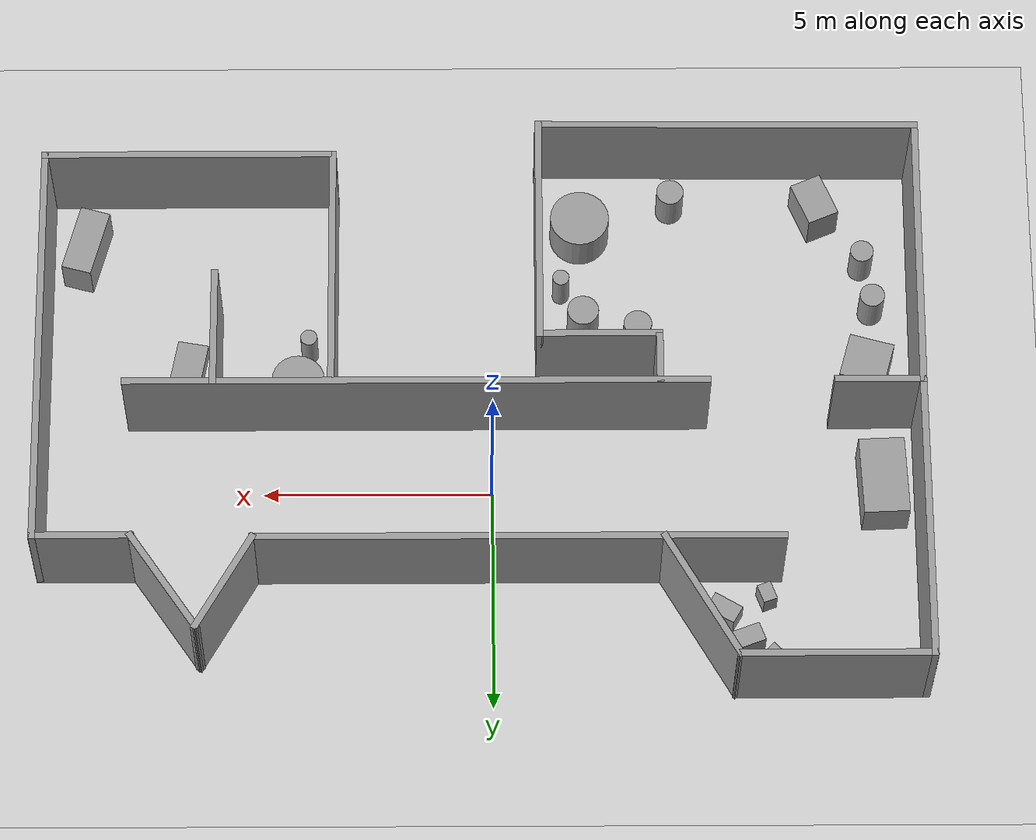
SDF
<sdf version="1.7">
 <world name="default">
  <light name="sun" type="directional">
   <pose>0 0 10 0 -0 0</pose>
   <diffuse>0.8 0.8 0.8 1</diffuse>
   <specular>0.2 0.2 0.2 1</specular>
   <attenuation>
    <range>1000</range>
    <constant>0.9</constant>
    <linear>0.01</linear>
    <quadratic>0.001</quadratic>
   </attenuation>
   <direction>-0.5 0.1 -0.9</direction>
   <spot><inner_angle>0</inner_angle><outer_angle>0</outer_angle><falloff>0</falloff></spot>
  </light>
  <model name="ground_plane">
   <static>1</static>
   <link name="link">
    <collision name="collision">
     <geometry><plane><normal>0 0 1</normal><size>100 100</size></plane></geometry>
     <surface>
      <contact><collide_bitmask>65535</collide_bitmask></contact>
      <friction><ode><mu>100</mu><mu2>50</mu2></ode></friction>
     </surface>
    </collision>
    <visual name="visual">
     <cast_shadows>0</cast_shadows>
     <geometry><plane><normal>0 0 1</normal><size>100 100</size></plane></geometry>
     <material>
      <script><uri>file://media/materials/scripts/gazebo.material</uri><name>Gazebo/Grey</name></script>
     </material>
    </visual>
   </link>
  </model>
  <gravity>0 0 -9.8</gravity>
  <magnetic_field>6e-06 2.3e-05 -4.2e-05</magnetic_field>
  <atmosphere type="adiabatic"/>
  <physics type="ode">
   <max_step_size>0.001</max_step_size>
   <real_time_factor>1</real_time_factor>
   <real_time_update_rate>1000</real_time_update_rate>
  </physics>
  <scene><ambient>0.4 0.4 0.4 1</ambient><background>0.7 0.7 0.7 1</background><shadows>1</shadows></scene>
  <audio><device>default</device></audio>
  <spherical_coordinates>
   <surface_model>EARTH_WGS84</surface_model>
   <latitude_deg>0</latitude_deg>
   <longitude_deg>0</longitude_deg>
   <elevation>0</elevation>
   <heading_deg>0</heading_deg>
  </spherical_coordinates>
  <model name="hab">
   <pose>0.241305 -1.56265 0 0 -0 0</pose>
   <link name="Wall_0">
    <collision name="Wall_0_Collision">
     <geometry><box><size>12.75 0.15 2.5</size></box></geometry>
     <pose>0 0 1.25 0 -0 0</pose>
    </collision>
    <visual name="Wall_0_Visual">
     <pose>0 0 1.25 0 -0 0</pose>
     <geometry><box><size>12.75 0.15 2.5</size></box></geometry>
     <material>
      <script><uri>file://media/materials/scripts/gazebo.material</uri><name>Gazebo/Grey</name></script>
      <ambient>1 1 1 1</ambient>
     </material>
     <meta><layer>0</layer></meta>
    </visual>
    <pose>1.40569 -0.080347 0 0 -0 0</pose>
   </link>
   <link name="Wall_10">
    <collision name="Wall_10_Collision">
     <geometry><box><size>6.5 0.15 2.5</size></box></geometry>
     <pose>0 0 1.25 0 -0 0</pose>
    </collision>
    <visual name="Wall_10_Visual">
     <pose>0 0 1.25 0 -0 0</pose>
     <geometry><box><size>6.5 0.15 2.5</size></box></geometry>
     <material>
      <script><uri>file://media/materials/scripts/gazebo.material</uri><name>Gazebo/Grey</name></script>
      <ambient>1 1 1 1</ambient>
     </material>
     <meta><layer>0</layer></meta>
    </visual>
    <pose>6.42837 -5.57433 0 0 -0 3.14159</pose>
   </link>
   <link name="Wall_11">
    <collision name="Wall_11_Collision">
     <geometry><box><size>5.5 0.15 2.5</size></box></geometry>
     <pose>0 0 1.25 0 -0 0</pose>
    </collision>
    <visual name="Wall_11_Visual">
     <pose>0 0 1.25 0 -0 0</pose>
     <geometry><box><size>5.5 0.15 2.5</size></box></geometry>
     <material>
      <script><uri>file://media/materials/scripts/gazebo.material</uri><name>Gazebo/Grey</name></script>
      <ambient>1 1 1 1</ambient>
     </material>
     <meta><layer>0</layer></meta>
    </visual>
    <pose>3.25337 -2.89933 0 0 -0 1.5708</pose>
   </link>
   <link name="Wall_13">
    <collision name="Wall_13_Collision">
     <geometry><box><size>1.25 0.15 2.5</size></box></geometry>
     <pose>0 0 1.25 0 -0 0</pose>
    </collision>
    <visual name="Wall_13_Visual">
     <pose>0 0 1.25 0 -0 0</pose>
     <geometry><box><size>1.25 0.15 2.5</size></box></geometry>
     <material>
      <script><uri>file://media/materials/scripts/gazebo.material</uri><name>Gazebo/Grey</name></script>
      <ambient>1 1 1 1</ambient>
     </material>
     <meta><layer>0</layer></meta>
    </visual>
    <pose>-3.87825 -0.643615 0 0 -0 -1.5708</pose>
   </link>
   <link name="Wall_14">
    <collision name="Wall_14_Collision">
     <geometry><box><size>2.75 0.15 2.5</size></box></geometry>
     <pose>0 0 1.25 0 -0 0</pose>
    </collision>
    <visual name="Wall_14_Visual">
     <pose>0 0 1.25 0 -0 0</pose>
     <geometry><box><size>2.75 0.15 2.5</size></box></geometry>
     <material>
      <script><uri>file://media/materials/scripts/gazebo.material</uri><name>Gazebo/Grey</name></script>
      <ambient>1 1 1 1</ambient>
     </material>
     <meta><layer>0</layer></meta>
    </visual>
    <pose>-2.57825 -1.19362 0 0 -0 0</pose>
   </link>
   <link name="Wall_15">
    <collision name="Wall_15_Collision">
     <geometry><box><size>5.25 0.15 2.5</size></box></geometry>
     <pose>0 0 1.25 0 -0 0</pose>
    </collision>
    <visual name="Wall_15_Visual">
     <pose>0 0 1.25 0 -0 0</pose>
     <geometry><box><size>5.25 0.15 2.5</size></box></geometry>
     <material>
      <script><uri>file://media/materials/scripts/gazebo.material</uri><name>Gazebo/Grey</name></script>
      <ambient>1 1 1 1</ambient>
     </material>
     <meta><layer>0</layer></meta>
    </visual>
    <pose>-1.27825 -3.74362 0 0 -0 -1.5708</pose>
   </link>
   <link name="Wall_16">
    <collision name="Wall_16_Collision">
     <geometry><box><size>8.47491 0.15 2.5</size></box></geometry>
     <pose>0 0 1.25 0 -0 0</pose>
    </collision>
    <visual name="Wall_16_Visual">
     <pose>0 0 1.25 0 -0 0</pose>
     <geometry><box><size>8.47491 0.15 2.5</size></box></geometry>
     <material>
      <script><uri>file://media/materials/scripts/gazebo.material</uri><name>Gazebo/Grey</name></script>
      <ambient>1 1 1 1</ambient>
     </material>
     <meta><layer>0</layer></meta>
    </visual>
    <pose>-5.44053 -6.26818 0 0 -0 3.13548</pose>
   </link>
   <link name="Wall_17">
    <collision name="Wall_17_Collision">
     <geometry><box><size>6.29254 0.15 2.5</size></box></geometry>
     <pose>0 0 1.25 0 -0 0</pose>
    </collision>
    <visual name="Wall_17_Visual">
     <pose>0 0 1.25 0 -0 0</pose>
     <geometry><box><size>6.29254 0.15 2.5</size></box></geometry>
     <material>
      <script><uri>file://media/materials/scripts/gazebo.material</uri><name>Gazebo/Grey</name></script>
      <ambient>1 1 1 1</ambient>
     </material>
     <meta><layer>0</layer></meta>
    </visual>
    <pose>-9.58161 -3.16306 0 0 -0 1.56389</pose>
   </link>
   <link name="Wall_2">
    <collision name="Wall_2_Collision">
     <geometry><box><size>11.5 0.15 2.5</size></box></geometry>
     <pose>0 0 1.25 0 -0 0</pose>
    </collision>
    <visual name="Wall_2_Visual">
     <pose>0 0 1.25 0 -0 0</pose>
     <geometry><box><size>11.5 0.15 2.5</size></box></geometry>
     <material>
      <script><uri>file://media/materials/scripts/gazebo.material</uri><name>Gazebo/Grey</name></script>
      <ambient>1 1 1 1</ambient>
     </material>
     <meta><layer>0</layer></meta>
    </visual>
    <pose>-0.772986 3.57224 0 0 -0 0</pose>
   </link>
   <link name="Wall_22">
    <collision name="Wall_22_Collision">
     <geometry><box><size>2 0.15 2.5</size></box></geometry>
     <pose>0 0 1.25 0 -0 0</pose>
    </collision>
    <visual name="Wall_22_Visual">
     <pose>0 0 1.25 0 -0 0</pose>
     <geometry><box><size>2 0.15 2.5</size></box></geometry>
     <material>
      <script><uri>file://media/materials/scripts/gazebo.material</uri><name>Gazebo/Grey</name></script>
      <ambient>1 1 1 1</ambient>
     </material>
     <meta><layer>0</layer></meta>
    </visual>
    <pose>-8.63542 -0.083379 0 0 -0 0</pose>
   </link>
   <link name="Wall_24">
    <collision name="Wall_24_Collision">
     <geometry><box><size>6.5 0.15 2.5</size></box></geometry>
     <pose>0 0 1.25 0 -0 0</pose>
    </collision>
    <visual name="Wall_24_Visual">
     <pose>0 0 1.25 0 -0 0</pose>
     <geometry><box><size>6.5 0.15 2.5</size></box></geometry>
     <material>
      <script><uri>file://media/materials/scripts/gazebo.material</uri><name>Gazebo/Grey</name></script>
      <ambient>1 1 1 1</ambient>
     </material>
     <meta><layer>0</layer></meta>
    </visual>
    <pose>-9.56042 3.09162 0 0 -0 1.5708</pose>
   </link>
   <link name="Wall_25">
    <collision name="Wall_25_Collision">
     <geometry><box><size>4.25 0.15 2.5</size></box></geometry>
     <pose>0 0 1.25 0 -0 0</pose>
    </collision>
    <visual name="Wall_25_Visual">
     <pose>0 0 1.25 0 -0 0</pose>
     <geometry><box><size>4.25 0.15 2.5</size></box></geometry>
     <material>
      <script><uri>file://media/materials/scripts/gazebo.material</uri><name>Gazebo/Grey</name></script>
      <ambient>1 1 1 1</ambient>
     </material>
     <meta><layer>0</layer></meta>
    </visual>
    <pose>-7.51042 6.26662 0 0 -0 0</pose>
   </link>
   <link name="Wall_26">
    <collision name="Wall_26_Collision">
     <geometry><box><size>3.25 0.15 2.5</size></box></geometry>
     <pose>0 0 1.25 0 -0 0</pose>
    </collision>
    <visual name="Wall_26_Visual">
     <pose>0 0 1.25 0 -0 0</pose>
     <geometry><box><size>3.25 0.15 2.5</size></box></geometry>
     <material>
      <script><uri>file://media/materials/scripts/gazebo.material</uri><name>Gazebo/Grey</name></script>
      <ambient>1 1 1 1</ambient>
     </material>
     <meta><layer>0</layer></meta>
    </visual>
    <pose>-4.68541 4.92428 0 0 -0 -1.0472</pose>
   </link>
   <link name="Wall_28">
    <collision name="Wall_28_Collision">
     <geometry><box><size>2.5 0.15 2.5</size></box></geometry>
     <pose>0 0 1.25 0 -0 0</pose>
    </collision>
    <visual name="Wall_28_Visual">
     <pose>0 0 1.25 0 -0 0</pose>
     <geometry><box><size>2.5 0.15 2.5</size></box></geometry>
     <material>
      <script><uri>file://media/materials/scripts/gazebo.material</uri><name>Gazebo/Grey</name></script>
      <ambient>1 1 1 1</ambient>
     </material>
     <meta><layer>0</layer></meta>
    </visual>
    <pose>5.48951 4.58982 0 0 -0 1.0472</pose>
   </link>
   <link name="Wall_29">
    <collision name="Wall_29_Collision">
     <geometry><box><size>2.6735 0.15 2.5</size></box></geometry>
     <pose>0 0 1.25 0 -0 0</pose>
    </collision>
    <visual name="Wall_29_Visual">
     <pose>0 0 1.25 0 -0 0</pose>
     <geometry><box><size>2.6735 0.15 2.5</size></box></geometry>
     <material>
      <script><uri>file://media/materials/scripts/gazebo.material</uri><name>Gazebo/Grey</name></script>
      <ambient>1 1 1 1</ambient>
     </material>
     <meta><layer>0</layer></meta>
    </visual>
    <pose>6.79019 4.56654 0 0 -0 -0.970087</pose>
   </link>
   <link name="Wall_4">
    <collision name="Wall_4_Collision">
     <geometry><box><size>2.25 0.15 2.5</size></box></geometry>
     <pose>0 0 1.25 0 -0 0</pose>
    </collision>
    <visual name="Wall_4_Visual">
     <pose>0 0 1.25 0 -0 0</pose>
     <geometry><box><size>2.25 0.15 2.5</size></box></geometry>
     <material>
      <script><uri>file://media/materials/scripts/gazebo.material</uri><name>Gazebo/Grey</name></script>
      <ambient>1 1 1 1</ambient>
     </material>
     <meta><layer>0</layer></meta>
    </visual>
    <pose>8.55337 3.52567 0 0 -0 0</pose>
   </link>
   <link name="Wall_6">
    <collision name="Wall_6_Collision">
     <geometry><box><size>2.75 0.15 2.5</size></box></geometry>
     <pose>0 0 1.25 0 -0 0</pose>
    </collision>
    <visual name="Wall_6_Visual">
     <pose>0 0 1.25 0 -0 0</pose>
     <geometry><box><size>2.75 0.15 2.5</size></box></geometry>
     <material>
      <script><uri>file://media/materials/scripts/gazebo.material</uri><name>Gazebo/Grey</name></script>
      <ambient>1 1 1 1</ambient>
     </material>
     <meta><layer>0</layer></meta>
    </visual>
    <pose>5.81077 -1.38111 0 0 -0 -1.5708</pose>
   </link>
   <link name="Wall_8">
    <collision name="Wall_8_Collision">
     <geometry><box><size>9.25 0.15 2.5</size></box></geometry>
     <pose>0 0 1.25 0 -0 0</pose>
    </collision>
    <visual name="Wall_8_Visual">
     <pose>0 0 1.25 0 -0 0</pose>
     <geometry><box><size>9.25 0.15 2.5</size></box></geometry>
     <material>
      <script><uri>file://media/materials/scripts/gazebo.material</uri><name>Gazebo/Grey</name></script>
      <ambient>1 1 1 1</ambient>
     </material>
     <meta><layer>0</layer></meta>
    </visual>
    <pose>9.60337 -1.02433 0 0 -0 -1.5708</pose>
   </link>
   <static>1</static>
  </model>
  <model name="unit_cylinder">
   <pose>-8.42107 -4.3554 0.499999 0 -0 1e-06</pose>
   <link name="link">
    <inertial>
     <mass>1</mass>
     <inertia><ixx>0.145833</ixx><ixy>0</ixy><ixz>0</ixz><iyy>0.145833</iyy><iyz>0</iyz><izz>0.125</izz></inertia>
    </inertial>
    <collision name="collision">
     <geometry><cylinder><radius>0.273537</radius><length>1</length></cylinder></geometry>
    </collision>
    <visual name="visual">
     <geometry><cylinder><radius>0.273537</radius><length>1</length></cylinder></geometry>
     <material>
      <script><name>Gazebo/Grey</name><uri>file://media/materials/scripts/gazebo.material</uri></script>
     </material>
    </visual>
   </link>
  </model>
  <model name="unit_cylinder_0">
   <pose>-3.99275 -6.9187 0.499992 0 -0 0</pose>
   <link name="link">
    <inertial>
     <mass>1</mass>
     <inertia><ixx>0.145833</ixx><ixy>0</ixy><ixz>0</ixz><iyy>0.145833</iyy><iyz>0</iyz><izz>0.125</izz></inertia>
    </inertial>
    <collision name="collision">
     <geometry><cylinder><radius>0.298035</radius><length>1</length></cylinder></geometry>
    </collision>
    <visual name="visual">
     <geometry><cylinder><radius>0.298035</radius><length>1</length></cylinder></geometry>
     <material>
      <script><name>Gazebo/Grey</name><uri>file://media/materials/scripts/gazebo.material</uri></script>
     </material>
    </visual>
   </link>
  </model>
  <model name="unit_cylinder_1">
   <pose>-8.22872 -5.43983 0.499991 0 -0 0</pose>
   <link name="link">
    <inertial>
     <mass>1</mass>
     <inertia><ixx>0.145833</ixx><ixy>0</ixy><ixz>0</ixz><iyy>0.145833</iyy><iyz>0</iyz><izz>0.125</izz></inertia>
    </inertial>
    <collision name="collision">
     <geometry><cylinder><radius>0.255211</radius><length>1</length></cylinder></geometry>
    </collision>
    <visual name="visual">
     <geometry><cylinder><radius>0.255211</radius><length>1</length></cylinder></geometry>
     <material>
      <script><name>Gazebo/Grey</name><uri>file://media/materials/scripts/gazebo.material</uri></script>
     </material>
    </visual>
   </link>
  </model>
  <model name="unit_cylinder_2">
   <pose>-3.22284 -3.68478 0.499996 0 -0 0</pose>
   <link name="link">
    <inertial>
     <mass>1</mass>
     <inertia><ixx>0.145833</ixx><ixy>0</ixy><ixz>0</ixz><iyy>0.145833</iyy><iyz>0</iyz><izz>0.125</izz></inertia>
    </inertial>
    <collision name="collision">
     <geometry><cylinder><radius>0.310441</radius><length>1</length></cylinder></geometry>
    </collision>
    <visual name="visual">
     <geometry><cylinder><radius>0.310441</radius><length>1</length></cylinder></geometry>
     <material>
      <script><name>Gazebo/Grey</name><uri>file://media/materials/scripts/gazebo.material</uri></script>
     </material>
    </visual>
   </link>
  </model>
  <model name="unit_cylinder_3">
   <pose>-1.96404 -6.27576 0.499994 -5e-06 2e-06 -0</pose>
   <link name="link">
    <inertial>
     <mass>1</mass>
     <inertia><ixx>0.145833</ixx><ixy>0</ixy><ixz>0</ixz><iyy>0.145833</iyy><iyz>0</iyz><izz>0.125</izz></inertia>
    </inertial>
    <collision name="collision">
     <geometry><cylinder><radius>0.651105</radius><length>1</length></cylinder></geometry>
    </collision>
    <visual name="visual">
     <geometry><cylinder><radius>0.651105</radius><length>1</length></cylinder></geometry>
     <material>
      <script><name>Gazebo/Grey</name><uri>file://media/materials/scripts/gazebo.material</uri></script>
     </material>
    </visual>
   </link>
  </model>
  <model name="unit_cylinder_4">
   <pose>-2.01996 -4.01247 0.499995 0 -1e-06 0</pose>
   <link name="link">
    <inertial>
     <mass>1</mass>
     <inertia><ixx>0.145833</ixx><ixy>0</ixy><ixz>0</ixz><iyy>0.145833</iyy><iyz>0</iyz><izz>0.125</izz></inertia>
    </inertial>
    <collision name="collision">
     <geometry><cylinder><radius>0.34678</radius><length>1</length></cylinder></geometry>
    </collision>
    <visual name="visual">
     <geometry><cylinder><radius>0.34678</radius><length>1</length></cylinder></geometry>
     <material>
      <script><name>Gazebo/Grey</name><uri>file://media/materials/scripts/gazebo.material</uri></script>
     </material>
    </visual>
   </link>
  </model>
  <model name="unit_box">
   <pose>-7.20805 -6.73391 0.5 0 -0 0.398154</pose>
   <link name="link">
    <inertial>
     <mass>1</mass>
     <inertia>
      <ixx>0.166667</ixx>
      <ixy>0</ixy>
      <ixz>0</ixz>
      <iyy>0.166667</iyy>
      <iyz>0</iyz>
      <izz>0.166667</izz>
     </inertia>
    </inertial>
    <collision name="collision"><geometry><box><size>0.713339 1 1</size></box></geometry></collision>
    <visual name="visual">
     <geometry><box><size>0.713339 1 1</size></box></geometry>
     <material>
      <script><name>Gazebo/Grey</name><uri>file://media/materials/scripts/gazebo.material</uri></script>
     </material>
    </visual>
   </link>
  </model>
  <model name="unit_box_0">
   <pose>-8.2471 -2.78685 0.499995 -1e-05 -0 -0.272556</pose>
   <link name="link">
    <inertial>
     <mass>1</mass>
     <inertia>
      <ixx>0.166667</ixx>
      <ixy>0</ixy>
      <ixz>0</ixz>
      <iyy>0.166667</iyy>
      <iyz>0</iyz>
      <izz>0.166667</izz>
     </inertia>
    </inertial>
    <collision name="collision"><geometry><box><size>1 1 1</size></box></geometry></collision>
    <visual name="visual">
     <geometry><box><size>1 1 1</size></box></geometry>
     <material>
      <script><name>Gazebo/Grey</name><uri>file://media/materials/scripts/gazebo.material</uri></script>
     </material>
    </visual>
   </link>
  </model>
  <model name="unit_box_1">
   <pose>-8.52665 -0.024764 0.499995 -0 -1e-05 0.041647</pose>
   <link name="link">
    <inertial>
     <mass>1</mass>
     <inertia>
      <ixx>0.166667</ixx>
      <ixy>0</ixy>
      <ixz>0</ixz>
      <iyy>0.166667</iyy>
      <iyz>0</iyz>
      <izz>0.166667</izz>
     </inertia>
    </inertial>
    <collision name="collision"><geometry><box><size>1 1.73814 1</size></box></geometry></collision>
    <visual name="visual">
     <geometry><box><size>1 1.73814 1</size></box></geometry>
     <material>
      <script><name>Gazebo/Grey</name><uri>file://media/materials/scripts/gazebo.material</uri></script>
     </material>
    </visual>
   </link>
  </model>
  <model name="unit_box_2">
   <pose>9.01363 -5.77536 0.499995 7e-06 -0 -0.265667</pose>
   <link name="link">
    <inertial>
     <mass>1</mass>
     <inertia>
      <ixx>0.166667</ixx>
      <ixy>0</ixy>
      <ixz>0</ixz>
      <iyy>0.166667</iyy>
      <iyz>0</iyz>
      <izz>0.166667</izz>
     </inertia>
    </inertial>
    <collision name="collision"><geometry><box><size>0.669057 1.51063 1</size></box></geometry></collision>
    <visual name="visual">
     <geometry><box><size>0.669057 1.51063 1</size></box></geometry>
     <material>
      <script><name>Gazebo/Grey</name><uri>file://media/materials/scripts/gazebo.material</uri></script>
     </material>
    </visual>
   </link>
  </model>
  <model name="unit_box_3">
   <pose>6.73643 -2.77455 0.214477 0 0 -0.182969</pose>
   <link name="link">
    <inertial>
     <mass>1</mass>
     <inertia>
      <ixx>0.166667</ixx>
      <ixy>0</ixy>
      <ixz>0</ixz>
      <iyy>0.166667</iyy>
      <iyz>0</iyz>
      <izz>0.166667</izz>
     </inertia>
    </inertial>
    <collision name="collision"><geometry><box><size>0.679741 1.45762 0.428954</size></box></geometry></collision>
    <visual name="visual">
     <geometry><box><size>0.679741 1.45762 0.428954</size></box></geometry>
     <material>
      <script><name>Gazebo/Grey</name><uri>file://media/materials/scripts/gazebo.material</uri></script>
     </material>
    </visual>
   </link>
  </model>
  <model name="unit_cylinder_5">
   <pose>4.25698 -2.34282 0.499993 -4e-06 -5e-06 0</pose>
   <link name="link">
    <inertial>
     <mass>1</mass>
     <inertia><ixx>0.145833</ixx><ixy>0</ixy><ixz>0</ixz><iyy>0.145833</iyy><iyz>0</iyz><izz>0.125</izz></inertia>
    </inertial>
    <collision name="collision">
     <geometry><cylinder><radius>0.577685</radius><length>1</length></cylinder></geometry>
    </collision>
    <visual name="visual">
     <geometry><cylinder><radius>0.577685</radius><length>1</length></cylinder></geometry>
     <material>
      <script><name>Gazebo/Grey</name><uri>file://media/materials/scripts/gazebo.material</uri></script>
     </material>
    </visual>
   </link>
  </model>
  <model name="unit_box_4">
   <pose>3.58515 1.48003 0.341018 9e-06 -0 -1e-06</pose>
   <link name="link">
    <inertial>
     <mass>1</mass>
     <inertia>
      <ixx>0.166667</ixx>
      <ixy>0</ixy>
      <ixz>0</ixz>
      <iyy>0.166667</iyy>
      <iyz>0</iyz>
      <izz>0.166667</izz>
     </inertia>
    </inertial>
    <collision name="collision"><geometry><box><size>1.77277 0.600382 0.682042</size></box></geometry></collision>
    <visual name="visual">
     <geometry><box><size>1.77277 0.600382 0.682042</size></box></geometry>
     <material>
      <script><name>Gazebo/Grey</name><uri>file://media/materials/scripts/gazebo.material</uri></script>
     </material>
    </visual>
   </link>
  </model>
  <model name="unit_cylinder_6">
   <pose>2.35743 1.41183 0.219882 1e-06 1e-06 0</pose>
   <link name="link">
    <inertial>
     <mass>1</mass>
     <inertia><ixx>0.145833</ixx><ixy>0</ixy><ixz>0</ixz><iyy>0.145833</iyy><iyz>0</iyz><izz>0.125</izz></inertia>
    </inertial>
    <collision name="collision">
     <geometry><cylinder><radius>0.263503</radius><length>0.43977</length></cylinder></geometry>
    </collision>
    <visual name="visual">
     <geometry><cylinder><radius>0.263503</radius><length>0.43977</length></cylinder></geometry>
     <material>
      <script><name>Gazebo/Grey</name><uri>file://media/materials/scripts/gazebo.material</uri></script>
     </material>
    </visual>
   </link>
  </model>
  <model name="unit_box_5">
   <pose>-5.48712 3.55662 0.279126 0 -0 0.357248</pose>
   <link name="link">
    <inertial>
     <mass>1</mass>
     <inertia>
      <ixx>0.166667</ixx>
      <ixy>0</ixy>
      <ixz>0</ixz>
      <iyy>0.166667</iyy>
      <iyz>0</iyz>
      <izz>0.166667</izz>
     </inertia>
    </inertial>
    <collision name="collision">
     <geometry><box><size>0.681329 0.419908 0.558252</size></box></geometry>
    </collision>
    <visual name="visual">
     <geometry><box><size>0.681329 0.419908 0.558252</size></box></geometry>
     <material>
      <script><name>Gazebo/Grey</name><uri>file://media/materials/scripts/gazebo.material</uri></script>
     </material>
    </visual>
   </link>
  </model>
  <model name="unit_box_5_clone">
   <pose>-4.99686 2.89786 0.279126 0 0 -0.535149</pose>
   <link name="link">
    <inertial>
     <mass>1</mass>
     <inertia>
      <ixx>0.166667</ixx>
      <ixy>0</ixy>
      <ixz>0</ixz>
      <iyy>0.166667</iyy>
      <iyz>0</iyz>
      <izz>0.166667</izz>
     </inertia>
    </inertial>
    <collision name="collision">
     <geometry><box><size>0.681329 0.419908 0.558252</size></box></geometry>
    </collision>
    <visual name="visual">
     <geometry><box><size>0.681329 0.419908 0.558252</size></box></geometry>
     <material>
      <script><name>Gazebo/Grey</name><uri>file://media/materials/scripts/gazebo.material</uri></script>
     </material>
    </visual>
   </link>
  </model>
  <model name="unit_box_5_clone_0">
   <pose>-5.9578 4.09541 0.279126 0 -0 0.785104</pose>
   <link name="link">
    <inertial>
     <mass>1</mass>
     <inertia>
      <ixx>0.166667</ixx>
      <ixy>0</ixy>
      <ixz>0</ixz>
      <iyy>0.166667</iyy>
      <iyz>0</iyz>
      <izz>0.166667</izz>
     </inertia>
    </inertial>
    <collision name="collision">
     <geometry><box><size>0.681329 0.419908 0.558252</size></box></geometry>
    </collision>
    <visual name="visual">
     <geometry><box><size>0.681329 0.419908 0.558252</size></box></geometry>
     <material>
      <script><name>Gazebo/Grey</name><uri>file://media/materials/scripts/gazebo.material</uri></script>
     </material>
    </visual>
   </link>
  </model>
  <model name="unit_box_5_clone_1">
   <pose>-5.92751 2.53517 0.279126 0 -0 0.357248</pose>
   <link name="link">
    <inertial>
     <mass>1</mass>
     <inertia>
      <ixx>0.166667</ixx>
      <ixy>0</ixy>
      <ixz>0</ixz>
      <iyy>0.166667</iyy>
      <iyz>0</iyz>
      <izz>0.166667</izz>
     </inertia>
    </inertial>
    <collision name="collision">
     <geometry><box><size>0.311914 0.419908 0.558252</size></box></geometry>
    </collision>
    <visual name="visual">
     <geometry><box><size>0.311914 0.419908 0.558252</size></box></geometry>
     <material>
      <script><name>Gazebo/Grey</name><uri>file://media/materials/scripts/gazebo.material</uri></script>
     </material>
    </visual>
   </link>
  </model>
  <model name="unit_cylinder_7">
   <pose>-1.53782 -4.81848 0.499991 0 -0 2e-06</pose>
   <link name="link">
    <inertial>
     <mass>1</mass>
     <inertia><ixx>0.145833</ixx><ixy>0</ixy><ixz>0</ixz><iyy>0.145833</iyy><iyz>0</iyz><izz>0.125</izz></inertia>
    </inertial>
    <collision name="collision">
     <geometry><cylinder><radius>0.183839</radius><length>1</length></cylinder></geometry>
    </collision>
    <visual name="visual">
     <geometry><cylinder><radius>0.183839</radius><length>1</length></cylinder></geometry>
     <material>
      <script><name>Gazebo/Grey</name><uri>file://media/materials/scripts/gazebo.material</uri></script>
     </material>
    </visual>
   </link>
  </model>
  <model name="unit_cylinder_7_clone">
   <pose>5.16798 -2.12141 0.499999 0 -0 1e-06</pose>
   <link name="link">
    <inertial>
     <mass>1</mass>
     <inertia><ixx>0.145833</ixx><ixy>0</ixy><ixz>0</ixz><iyy>0.145833</iyy><iyz>0</iyz><izz>0.125</izz></inertia>
    </inertial>
    <collision name="collision">
     <geometry><cylinder><radius>0.183839</radius><length>1</length></cylinder></geometry>
    </collision>
    <visual name="visual">
     <geometry><cylinder><radius>0.183839</radius><length>1</length></cylinder></geometry>
     <material>
      <script><name>Gazebo/Grey</name><uri>file://media/materials/scripts/gazebo.material</uri></script>
     </material>
    </visual>
   </link>
  </model>
  <model name="unit_cylinder_7_clone_0">
   <pose>4.03224 -3.36773 0.499991 0 -0 1e-06</pose>
   <link name="link">
    <inertial>
     <mass>1</mass>
     <inertia><ixx>0.145833</ixx><ixy>0</ixy><ixz>0</ixz><iyy>0.145833</iyy><iyz>0</iyz><izz>0.125</izz></inertia>
    </inertial>
    <collision name="collision">
     <geometry><cylinder><radius>0.183839</radius><length>1</length></cylinder></geometry>
    </collision>
    <visual name="visual">
     <geometry><cylinder><radius>0.183839</radius><length>1</length></cylinder></geometry>
     <material>
      <script><name>Gazebo/Grey</name><uri>file://media/materials/scripts/gazebo.material</uri></script>
     </material>
    </visual>
   </link>
  </model>
  <model name="unit_cylinder_6_clone">
   <pose>1.89919 1.64725 0.239892 0 -0 0</pose>
   <link name="link">
    <inertial>
     <mass>1</mass>
     <inertia><ixx>0.145833</ixx><ixy>0</ixy><ixz>0</ixz><iyy>0.145833</iyy><iyz>0</iyz><izz>0.125</izz></inertia>
    </inertial>
    <collision name="collision">
     <geometry><cylinder><radius>0.182026</radius><length>0.479784</length></cylinder></geometry>
    </collision>
    <visual name="visual">
     <geometry><cylinder><radius>0.182026</radius><length>0.479784</length></cylinder></geometry>
     <material>
      <script><name>Gazebo/Grey</name><uri>file://media/materials/scripts/gazebo.material</uri></script>
     </material>
    </visual>
   </link>
  </model>
 </world>
</sdf>
